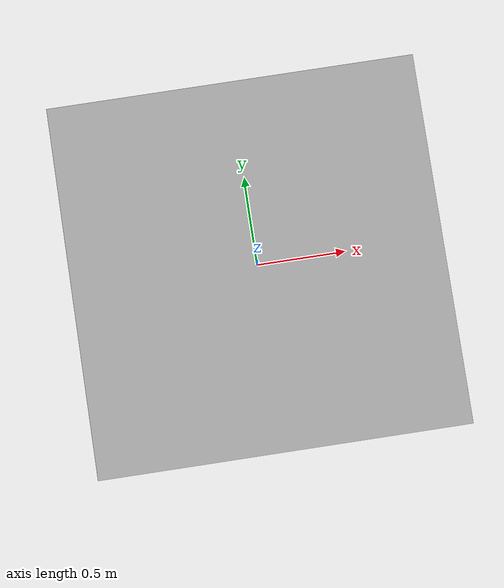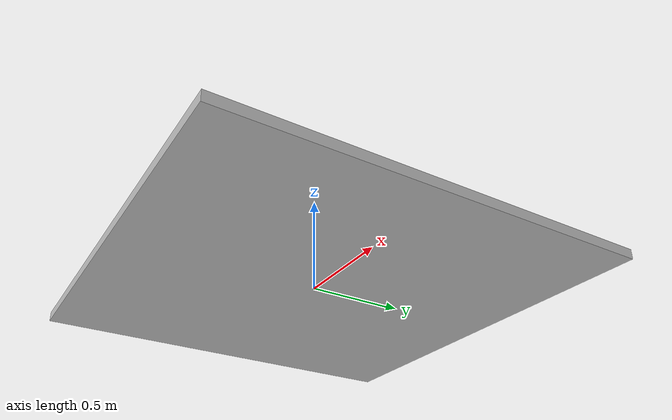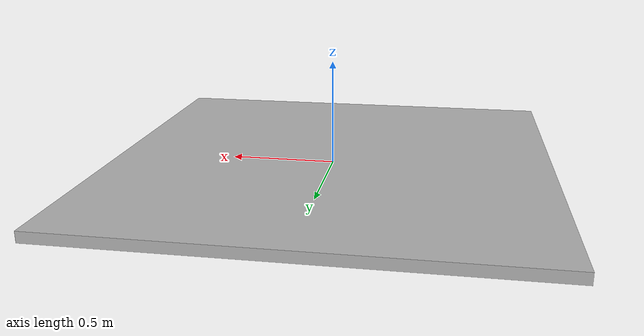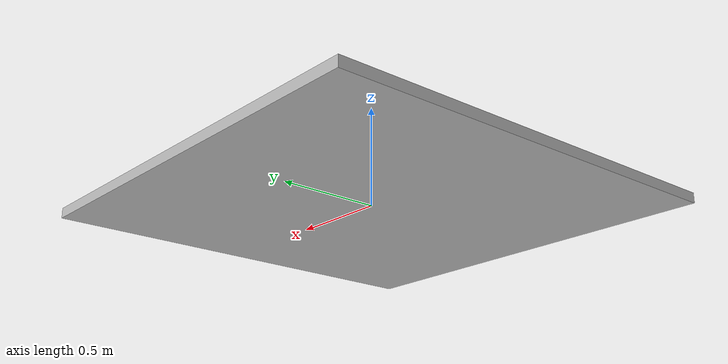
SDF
<?xml version='1.0'?>
<sdf version='1.6'>
  <model name="stop_crossing">
      <static>true</static>
      <link name='link'>
        <collision name='collision'>
          <geometry>
         <box>
            <size>2.1 2.1 0.05</size>
          </box>
          </geometry>
          <surface>
            <friction>
              <ode>
                <mu>100</mu>
                <mu2>50</mu2>
              </ode>
            </friction>
          </surface>
        </collision>
        <visual name='visual'>
          <cast_shadows>0</cast_shadows>
          <geometry>
         <box>
            <size>2.1 2.1 0.05</size>
          </box>
          </geometry>
          <material>
            <script>
              <uri>model://stop_crossing/materials/scripts</uri>
              <uri>model://stop_crossing/materials/textures/</uri>
              <name>stop_crossing/Image</name>
            </script>
          </material>
        </visual>
      </link>
  </model>
</sdf>
